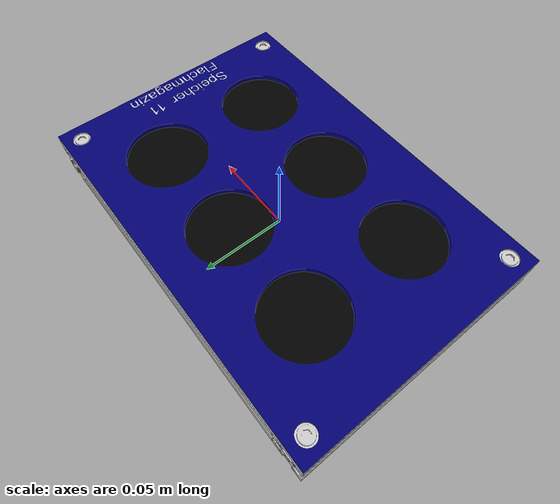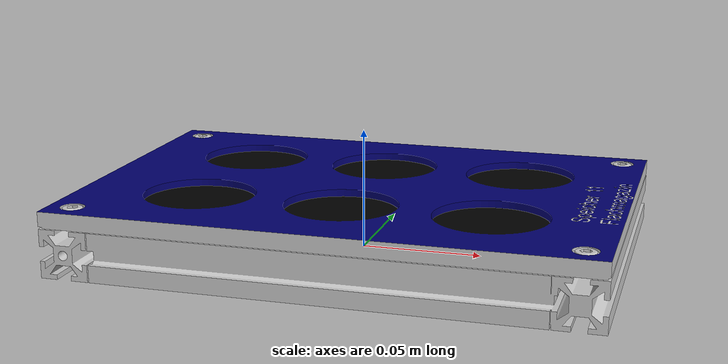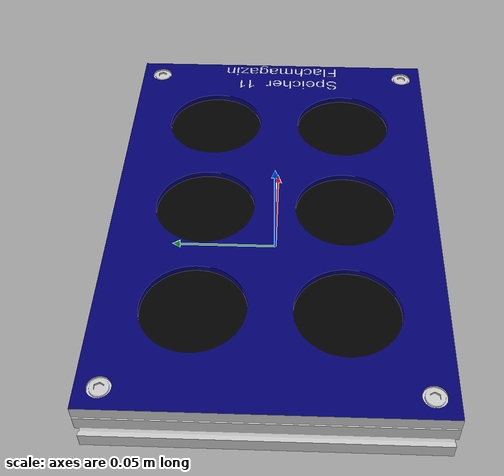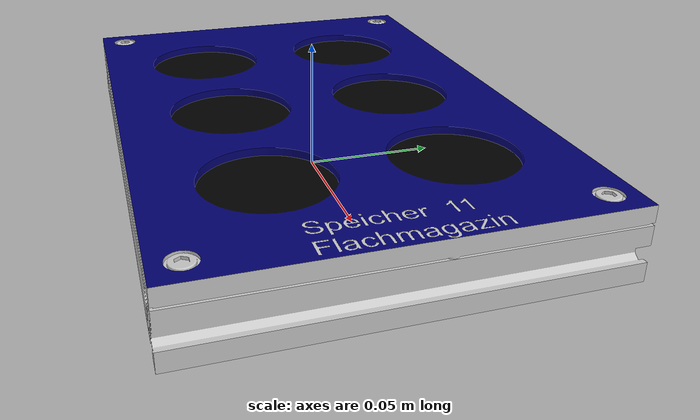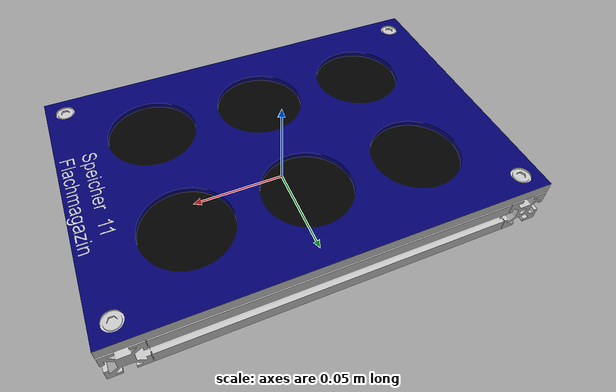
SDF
<?xml version="1.0" ?>
<sdf version="1.5">
    <model name="storage">
        <link name="link">
            <gravity>true</gravity>
            <inertial>
                <mass>0.7</mass>
                <inertia>
                    <ixx>0.0002</ixx>
                    <iyy>0.0004</iyy>
                    <izz>0.0006</izz>

                </inertia>
            </inertial>
            <collision name="collision">
                <geometry>
                    <mesh><uri>collision/storage.stl</uri></mesh>
                </geometry>
            </collision>
            <visual name="visual">
                <geometry>
                    <mesh><uri>visual/storage.dae</uri></mesh>
                </geometry>
            </visual>
        </link>
    </model>
</sdf>
